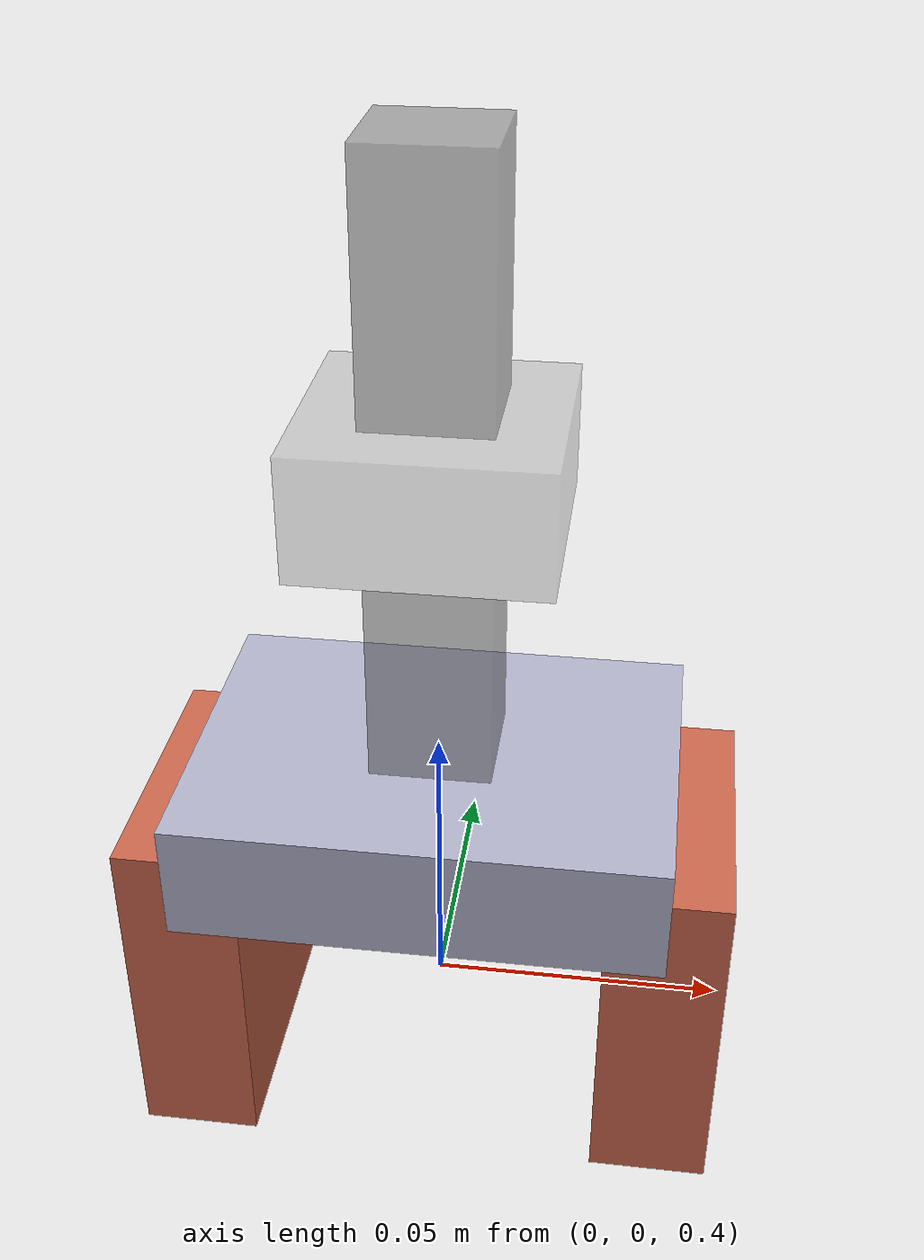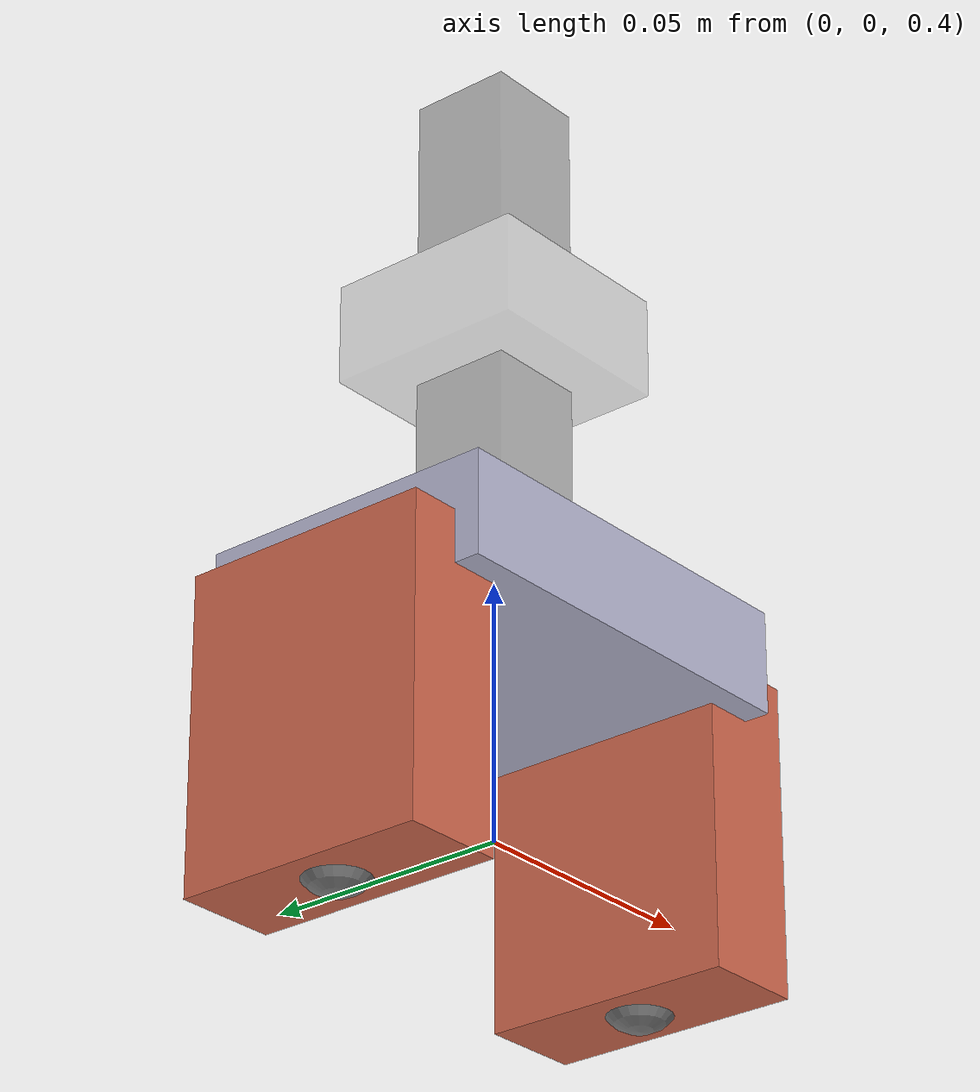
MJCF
<?xml version='1.0' encoding='utf-8'?>
<mujoco model="SimplePicker">
  <compiler angle="radian" />

  <default>
    <joint limited="true" damping="5.0" />
    <geom contype="1" conaffinity="1" condim="4" />
    <position ctrlrange="-1 1" />
  </default>

  <worldbody>
    <!-- Cartesian gantry: X rail -> Y rail -> Z rail (downward) -> palm + fingers
         Gantry base at z=0.5, Z-slide moves downward to reach table at z=0.2 -->
    <body name="x_carriage" pos="0 0 0.5">
      <joint name="x_joint" type="slide" axis="1 0 0" range="-0.15 0.15"
             damping="10.0" />
      <geom name="x_carriage_geom" type="box" size="0.02 0.02 0.01"
            rgba="0.5 0.5 0.5 0.3" mass="0.5" contype="0" conaffinity="0" />

      <body name="y_carriage" pos="0 0 0">
        <joint name="y_joint" type="slide" axis="0 1 0" range="-0.15 0.15"
               damping="10.0" />
        <geom name="y_carriage_geom" type="box" size="0.02 0.02 0.01"
              rgba="0.5 0.5 0.5 0.3" mass="0.5" contype="0" conaffinity="0" />

        <body name="base" pos="0 0 0">
          <!-- Z-slide: range 0 to -0.3 (downward). At max extension, hand at z=0.2 (table surface) -->
          <joint name="z_joint" type="slide" axis="0 0 -1" range="0 0.3"
                 damping="10.0" />
          <geom name="z_rail_geom" type="box" size="0.01 0.01 0.05"
                rgba="0.4 0.4 0.4 0.5" mass="0.2" contype="0" conaffinity="0" />

          <!-- Palm -->
          <geom name="palm" type="box" size="0.04 0.03 0.01" pos="0 0 -0.06"
                rgba="0.7 0.7 0.8 1.0" mass="0.3"
                friction="5.0 0.005 0.001" />

          <!-- Camera on base (SimpleWheelerEnv compatibility, not used in training) -->
          <camera name="camera_1_cam" fovy="90.0"
                  pos="0 -0.1 -0.03" euler="-1.5707963 0 3.14159265" />

          <!-- Left finger -->
          <body name="left_finger" pos="-0.04 0 -0.06">
            <joint name="left_finger_joint" type="slide" axis="1 0 0"
                   range="0 0.04" damping="2.0" />
            <geom name="left_finger_geom" type="box" size="0.01 0.025 0.03"
                  pos="0 0 -0.03" rgba="0.8 0.4 0.3 1.0" mass="0.05"
                  friction="5.0 0.005 0.001" />
            <site name="left_fingertip" pos="0 0 -0.055" size="0.008" />
          </body>

          <!-- Right finger -->
          <body name="right_finger" pos="0.04 0 -0.06">
            <joint name="right_finger_joint" type="slide" axis="-1 0 0"
                   range="0 0.04" damping="2.0" />
            <geom name="right_finger_geom" type="box" size="0.01 0.025 0.03"
                  pos="0 0 -0.03" rgba="0.8 0.4 0.3 1.0" mass="0.05"
                  friction="5.0 0.005 0.001" />
            <site name="right_fingertip" pos="0 0 -0.055" size="0.008" />
          </body>
        </body>
      </body>
    </body>
  </worldbody>

  <!-- Prevent self-collision between gantry parts -->
  <contact>
    <exclude body1="x_carriage" body2="y_carriage" />
    <exclude body1="y_carriage" body2="base" />
    <exclude body1="base" body2="left_finger" />
    <exclude body1="base" body2="right_finger" />
    <exclude body1="left_finger" body2="right_finger" />
  </contact>

  <actuator>
    <position name="x_motor" joint="x_joint" kp="100" ctrlrange="-0.15 0.15" />
    <position name="y_motor" joint="y_joint" kp="100" ctrlrange="-0.15 0.15" />
    <position name="z_motor" joint="z_joint" kp="100" ctrlrange="0 0.3" />
    <position name="left_finger_motor" joint="left_finger_joint" kp="50" ctrlrange="0 0.04" />
    <position name="right_finger_motor" joint="right_finger_joint" kp="50" ctrlrange="0 0.04" />
  </actuator>

  <!-- Sensors: 5 joint positions + 5 joint velocities + 2 touch = 12 dims -->
  <sensor>
    <jointpos name="x_pos" joint="x_joint" />
    <jointpos name="y_pos" joint="y_joint" />
    <jointpos name="z_pos" joint="z_joint" />
    <jointpos name="left_finger_pos" joint="left_finger_joint" />
    <jointpos name="right_finger_pos" joint="right_finger_joint" />
    <jointvel name="x_vel" joint="x_joint" />
    <jointvel name="y_vel" joint="y_joint" />
    <jointvel name="z_vel" joint="z_joint" />
    <jointvel name="left_finger_vel" joint="left_finger_joint" />
    <jointvel name="right_finger_vel" joint="right_finger_joint" />
    <touch name="left_touch" site="left_fingertip" />
    <touch name="right_touch" site="right_fingertip" />
  </sensor>
</mujoco>
